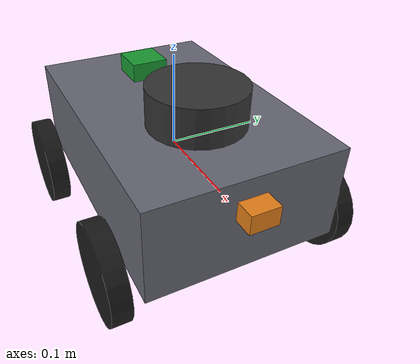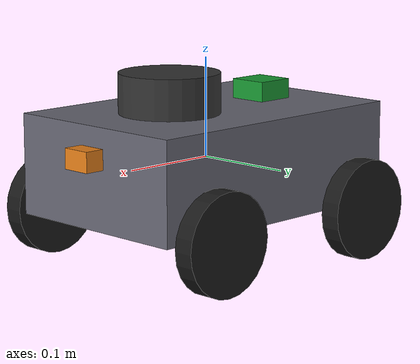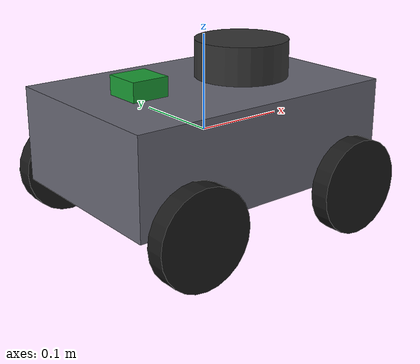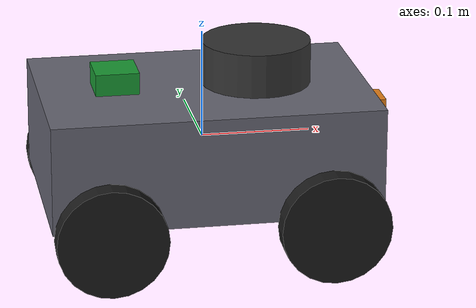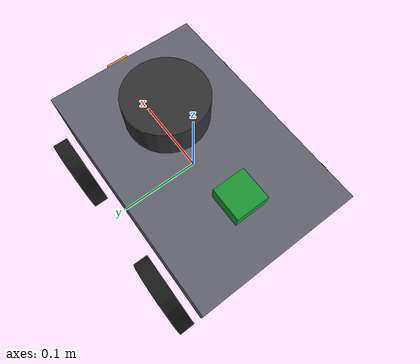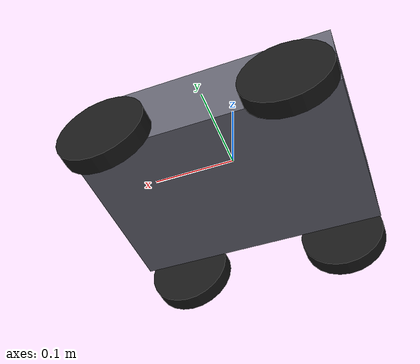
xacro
<?xml version="1.0"?>
<robot name="tiny_bot" xmlns:xacro="http://www.ros.org/wiki/xacro">

  <!-- 1. Constants. xacro:property gives the file one place to edit dimensions. -->
  <xacro:property name="chassis_x" value="0.30"/>
  <xacro:property name="chassis_y" value="0.20"/>
  <xacro:property name="chassis_z" value="0.10"/>
  <xacro:property name="chassis_mass" value="2.0"/>

  <xacro:property name="wheel_radius" value="0.05"/>
  <xacro:property name="wheel_thickness" value="0.02"/>
  <xacro:property name="wheel_mass" value="0.1"/>
  <xacro:property name="wheel_y_offset" value="0.12"/>   <!-- half chassis_y + a hair -->
  <xacro:property name="wheel_x_offset" value="0.10"/>   <!-- forward/back offset from chassis centre -->

  <link name="base_link">
    <visual>
      <origin xyz="0 0 0" rpy="0 0 0"/>
      <geometry><box size="${chassis_x} ${chassis_y} ${chassis_z}"/></geometry>
      <material name="grey"><color rgba="0.4 0.4 0.45 1.0"/></material>
    </visual>
    <collision>
      <origin xyz="0 0 0" rpy="0 0 0"/>
      <geometry><box size="${chassis_x} ${chassis_y} ${chassis_z}"/></geometry>
    </collision>
    <inertial>
      <origin xyz="0 0 0" rpy="0 0 0"/>
      <mass value="${chassis_mass}"/>
      <!-- box inertia: (1/12)*m*(y^2+z^2), (1/12)*m*(x^2+z^2), (1/12)*m*(x^2+y^2) -->
      <inertia ixx="0.0083" ixy="0.0" ixz="0.0"
               iyy="0.0167" iyz="0.0"
               izz="0.0217"/>
    </inertial>
  </link>

  <xacro:macro name="wheel" params="prefix y_reflect x_reflect">
    <link name="${prefix}_wheel">
      <visual>
        <origin xyz="0 0 0" rpy="${pi/2} 0 0"/>
        <geometry><cylinder radius="${wheel_radius}" length="${wheel_thickness}"/></geometry>
        <material name="black"><color rgba="0.1 0.1 0.1 1.0"/></material>
      </visual>
      <collision>
        <origin xyz="0 0 0" rpy="${pi/2} 0 0"/>
        <geometry><cylinder radius="${wheel_radius}" length="${wheel_thickness}"/></geometry>
      </collision>
      <inertial>
        <origin xyz="0 0 0" rpy="${pi/2} 0 0"/>
        <mass value="${wheel_mass}"/>
        <inertia ixx="0.00007" ixy="0.0" ixz="0.0"
                 iyy="0.00007" iyz="0.0"
                 izz="0.000125"/>
      </inertial>
    </link>

    <!-- continuous = no joint limits, rotates freely. axis="0 1 0" because
         the wheel spins about the robot's y-axis. -->
    <joint name="${prefix}_wheel_joint" type="continuous">
      <parent link="base_link"/>
      <child link="${prefix}_wheel"/>
      <origin xyz="${x_reflect * wheel_x_offset} ${y_reflect * wheel_y_offset} ${-chassis_z/2}" rpy="0 0 0"/>
      <axis xyz="0 1 0"/>
    </joint>
  </xacro:macro>

  <!-- Four wheels: front-left, front-right, rear-left, rear-right. -->
  <xacro:wheel prefix="fl" y_reflect="1"  x_reflect="1"/>
  <xacro:wheel prefix="fr" y_reflect="-1" x_reflect="1"/>
  <xacro:wheel prefix="rl" y_reflect="1"  x_reflect="-1"/>
  <xacro:wheel prefix="rr" y_reflect="-1" x_reflect="-1"/>

  <link name="base_scan">
    <visual>
      <origin xyz="0 0 0" rpy="0 0 0"/>
      <geometry><cylinder radius="0.05" length="0.04"/></geometry>
      <material name="dark_grey"><color rgba="0.2 0.2 0.2 1.0"/></material>
    </visual>
    <inertial>
      <mass value="0.05"/>
      <inertia ixx="1e-5" ixy="0.0" ixz="0.0" iyy="1e-5" iyz="0.0" izz="1e-5"/>
    </inertial>
  </link>
  <joint name="base_scan_joint" type="fixed">
    <parent link="base_link"/>
    <child link="base_scan"/>
    <!-- chassis half-height (0.05) + cylinder half-height (0.02) = 0.07 -->
    <origin xyz="0.05 0 0.07" rpy="0 0 0"/>
  </joint>

  <!-- 5. IR distance sensor (front). Same pattern: URDF declares the frame,
         the sensor driver publishes sensor_msgs/Range data in it.
         Bolted to the front of the chassis facing forward. -->
  <link name="ir_front">
    <visual>
      <origin xyz="0 0 0" rpy="0 0 0"/>
      <geometry><box size="0.02 0.03 0.02"/></geometry>
      <material name="orange"><color rgba="0.9 0.5 0.1 1.0"/></material>
    </visual>
    <inertial>
      <mass value="0.01"/>
      <inertia ixx="1e-6" ixy="0.0" ixz="0.0" iyy="1e-6" iyz="0.0" izz="1e-6"/>
    </inertial>
  </link>
  <joint name="ir_front_joint" type="fixed">
    <parent link="base_link"/>
    <child link="ir_front"/>
    <!-- chassis half-length (0.15) + sensor half-depth (0.01) = 0.16 forward -->
    <origin xyz="0.16 0 0.02" rpy="0 0 0"/>
  </joint>

  <!-- 6. IMU. Same pattern: URDF declares the frame, the IMU driver
         publishes sensor_msgs/Imu data in it. Convention: `imu_link`. -->
  <link name="imu_link">
    <visual>
      <origin xyz="0 0 0" rpy="0 0 0"/>
      <geometry><box size="0.04 0.04 0.02"/></geometry>
      <material name="green"><color rgba="0.1 0.6 0.2 1.0"/></material>
    </visual>
    <inertial>
      <mass value="0.01"/>
      <inertia ixx="1e-6" ixy="0.0" ixz="0.0" iyy="1e-6" iyz="0.0" izz="1e-6"/>
    </inertial>
  </link>
  <joint name="imu_joint" type="fixed">
    <parent link="base_link"/>
    <child link="imu_link"/>
    <!-- chassis half-height (0.05) + box half-height (0.01) = 0.06 -->
    <origin xyz="-0.08 0 0.06" rpy="0 0 0"/>
  </joint>

</robot>
